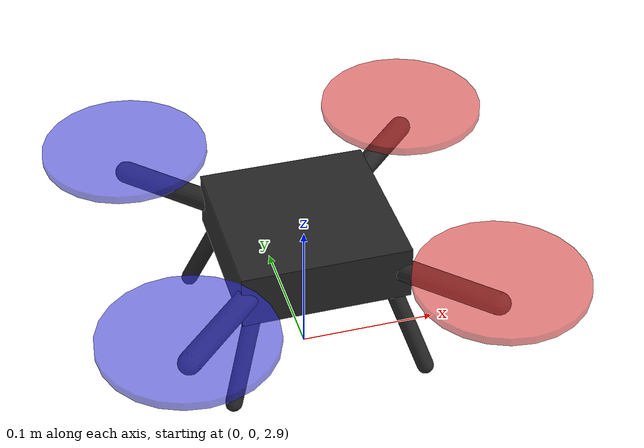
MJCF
<mujoco model="drone_landing">
  <compiler angle="degree" meshdir="." texturedir="."/>
  <option timestep="0.002" gravity="0 0 -9.81" integrator="implicitfast"/>

  <default>
    <geom condim="3" friction="1 0.005 0.0001"/>
    <default class="drone_geom">
      <geom contype="1" conaffinity="1" rgba="0.15 0.15 0.15 1"/>
    </default>
    <default class="motor">
      <!-- gear: fx fy fz tx ty tz in site frame. tz is the yaw reaction torque per Newton of thrust. -->
      <motor ctrllimited="true" ctrlrange="0 4.905"/>
    </default>
  </default>

  <asset>
    <texture name="skybox" type="skybox" builtin="gradient" rgb1="0.6 0.75 0.95" rgb2="0.2 0.3 0.5" width="64" height="64"/>
    <texture name="pad_tex" type="cube" file="h_pad.png"/>
    <material name="ground_mat" rgba="0.35 0.45 0.3 1" specular="0" shininess="0"/>
    <material name="pad_mat" texture="pad_tex" texuniform="false" specular="0" shininess="0"/>
  </asset>

  <visual>
    <global offwidth="640" offheight="480"/>
    <map znear="0.01" zfar="50"/>
    <quality shadowsize="1024"/>
  </visual>

  <worldbody>
    <!-- no cast shadows: keeps the black-H detector free of dark drone shadows on the pad -->
    <light name="sun" pos="0 0 10" dir="0 0 -1" directional="true" castshadow="false" diffuse="0.8 0.8 0.8" ambient="0.4 0.4 0.4"/>

    <geom name="ground" type="plane" size="20 20 0.1" material="ground_mat"/>

    <!-- Landing pad: 1.5 m x 1.5 m, 2 cm thick, top face textured with the H.
         Its body position is randomised by the environment at reset. -->
    <body name="pad" pos="0 0 0">
      <geom name="pad_geom" type="box" size="0.75 0.75 0.01" pos="0 0 0.01" material="pad_mat"/>
      <site name="pad_center" pos="0 0 0.02" size="0.01" rgba="0 0 0 0"/>
    </body>

    <!-- Quadrotor -->
    <body name="drone" pos="0 0 3">
      <freejoint name="drone_free"/>
      <!-- external chase camera that follows the drone (for viewing / video) -->
      <camera name="chase" mode="trackcom" pos="-2 -2 2" xyaxes="1 -1 0 2 2 4"/>
      <inertial pos="0 0 0" mass="1.0" diaginertia="0.0082 0.0082 0.0149"/>

      <geom name="core" class="drone_geom" type="box" size="0.06 0.06 0.02"/>
      <!-- arms (X configuration, 0.15 m from centre to motor) -->
      <geom name="arm1" class="drone_geom" type="capsule" fromto="0 0 0  0.106 -0.106 0" size="0.008"/>
      <geom name="arm2" class="drone_geom" type="capsule" fromto="0 0 0 -0.106  0.106 0" size="0.008"/>
      <geom name="arm3" class="drone_geom" type="capsule" fromto="0 0 0  0.106  0.106 0" size="0.008"/>
      <geom name="arm4" class="drone_geom" type="capsule" fromto="0 0 0 -0.106 -0.106 0" size="0.008"/>
      <!-- rotors (visual only) -->
      <geom name="rotor1" type="cylinder" size="0.06 0.003" pos=" 0.106 -0.106 0.02" rgba="0.9 0.2 0.2 0.6" contype="0" conaffinity="0" mass="0"/>
      <geom name="rotor2" type="cylinder" size="0.06 0.003" pos="-0.106  0.106 0.02" rgba="0.2 0.2 0.9 0.6" contype="0" conaffinity="0" mass="0"/>
      <geom name="rotor3" type="cylinder" size="0.06 0.003" pos=" 0.106  0.106 0.02" rgba="0.9 0.2 0.2 0.6" contype="0" conaffinity="0" mass="0"/>
      <geom name="rotor4" type="cylinder" size="0.06 0.003" pos="-0.106 -0.106 0.02" rgba="0.2 0.2 0.9 0.6" contype="0" conaffinity="0" mass="0"/>
      <!-- landing legs: bottom at z = -0.08 -->
      <geom name="leg1" class="drone_geom" type="capsule" fromto=" 0.05 -0.05 -0.02  0.07 -0.07 -0.08" size="0.006"/>
      <geom name="leg2" class="drone_geom" type="capsule" fromto="-0.05  0.05 -0.02 -0.07  0.07 -0.08" size="0.006"/>
      <geom name="leg3" class="drone_geom" type="capsule" fromto=" 0.05  0.05 -0.02  0.07  0.07 -0.08" size="0.006"/>
      <geom name="leg4" class="drone_geom" type="capsule" fromto="-0.05 -0.05 -0.02 -0.07 -0.07 -0.08" size="0.006"/>

      <!-- thrust sites -->
      <site name="thrust1" pos=" 0.106 -0.106 0.02" size="0.005" rgba="1 0 0 0"/>
      <site name="thrust2" pos="-0.106  0.106 0.02" size="0.005" rgba="1 0 0 0"/>
      <site name="thrust3" pos=" 0.106  0.106 0.02" size="0.005" rgba="1 0 0 0"/>
      <site name="thrust4" pos="-0.106 -0.106 0.02" size="0.005" rgba="1 0 0 0"/>

      <!-- IMU site at the body centre -->
      <site name="imu" pos="0 0 0" size="0.005" rgba="0 1 0 0"/>

      <camera name="down_cam" pos="0 0 -0.07" quat="1 0 0 0" fovy="120"/>
    </body>
  </worldbody>

  <actuator>
    <!-- CCW pair: positive reaction torque; CW pair: negative -->
    <motor name="m1" class="motor" site="thrust1" gear="0 0 1 0 0  0.02"/>
    <motor name="m2" class="motor" site="thrust2" gear="0 0 1 0 0  0.02"/>
    <motor name="m3" class="motor" site="thrust3" gear="0 0 1 0 0 -0.02"/>
    <motor name="m4" class="motor" site="thrust4" gear="0 0 1 0 0 -0.02"/>
  </actuator>

  <sensor>
    <accelerometer name="imu_acc" site="imu"/>
    <gyro name="imu_gyro" site="imu"/>
    <framequat name="drone_quat" objtype="body" objname="drone"/>
    <framepos name="drone_pos" objtype="body" objname="drone"/>
    <velocimeter name="drone_vel" site="imu"/>
  </sensor>
</mujoco>
